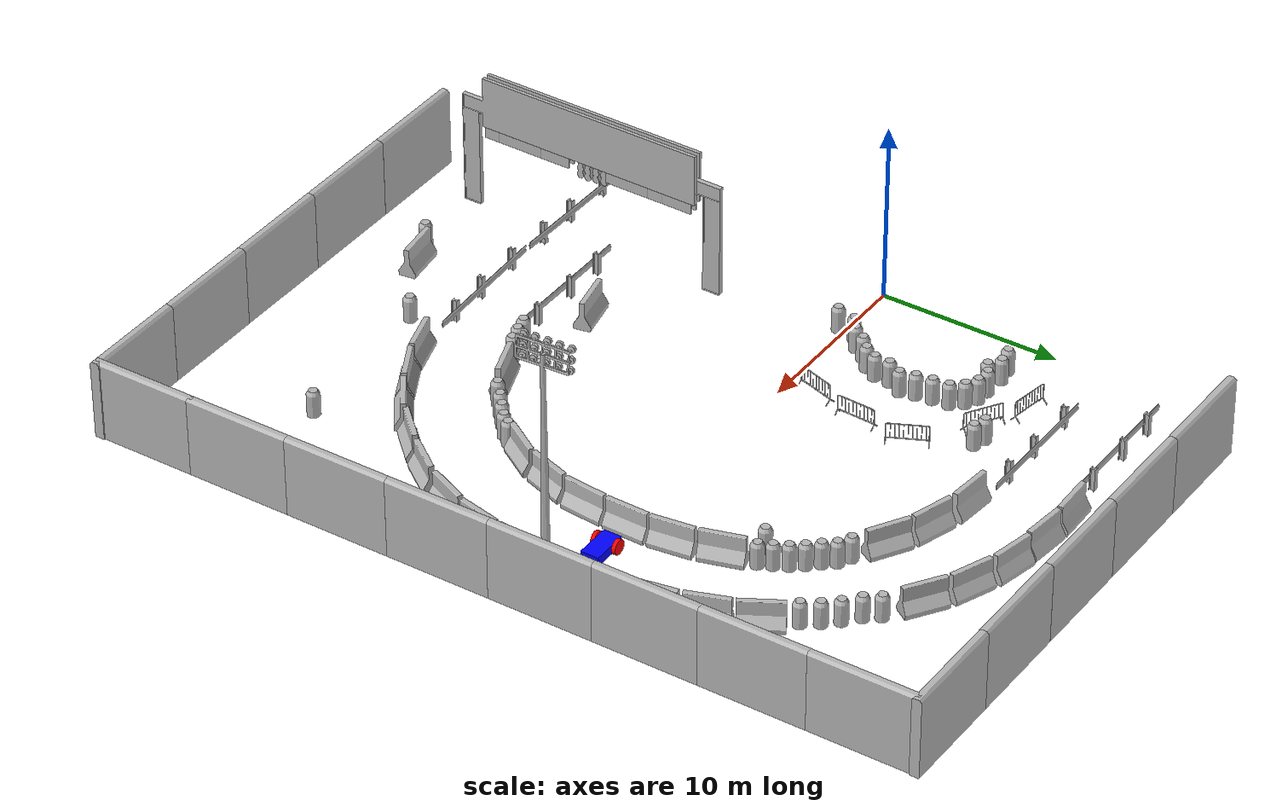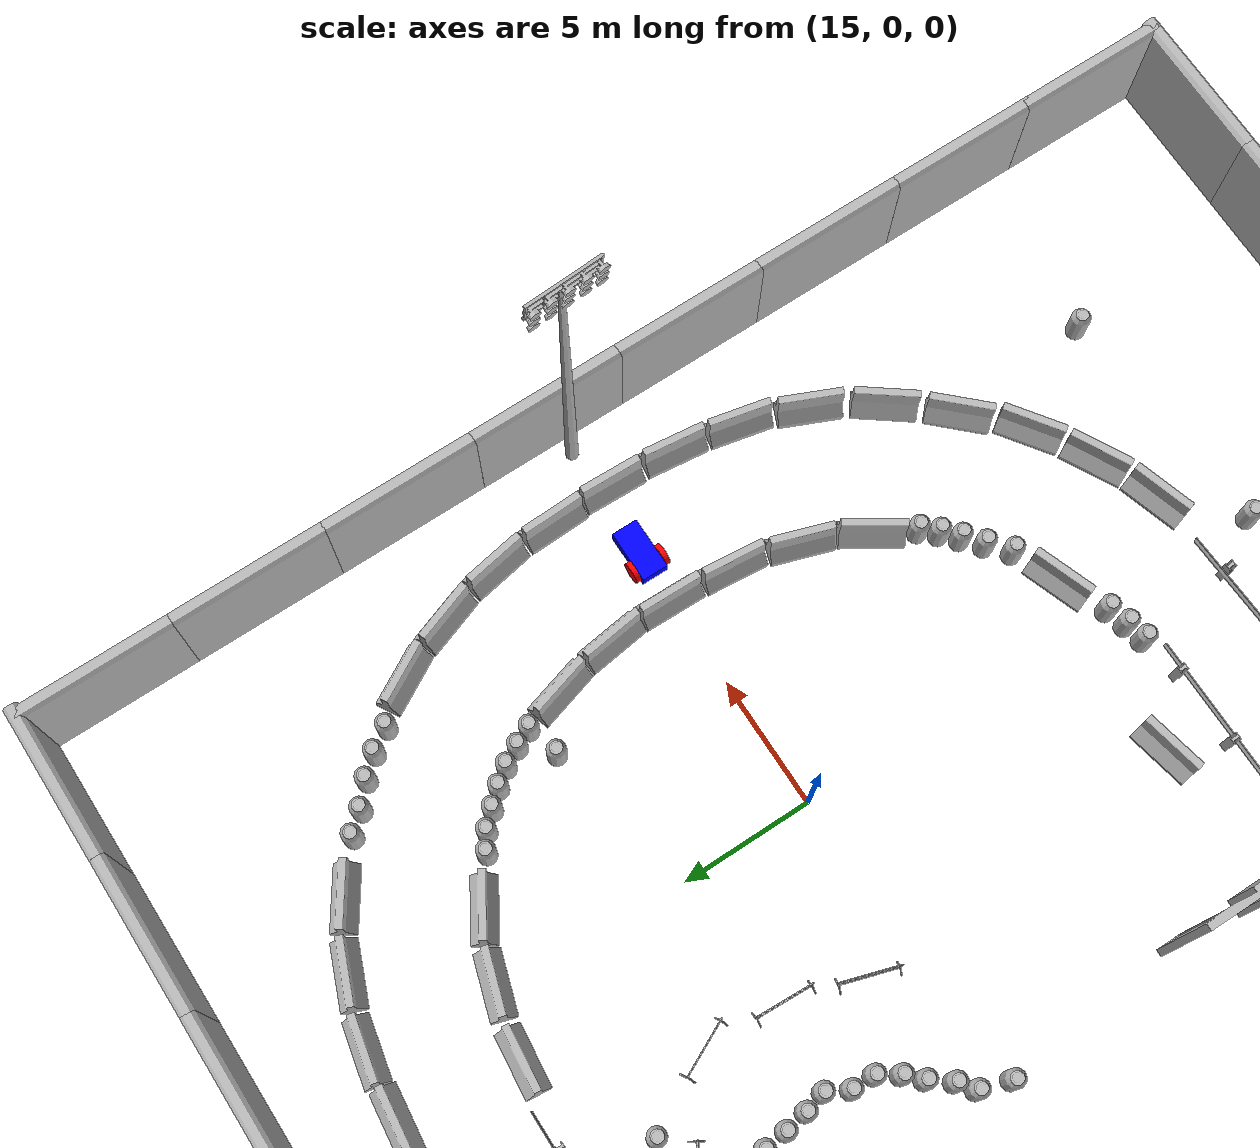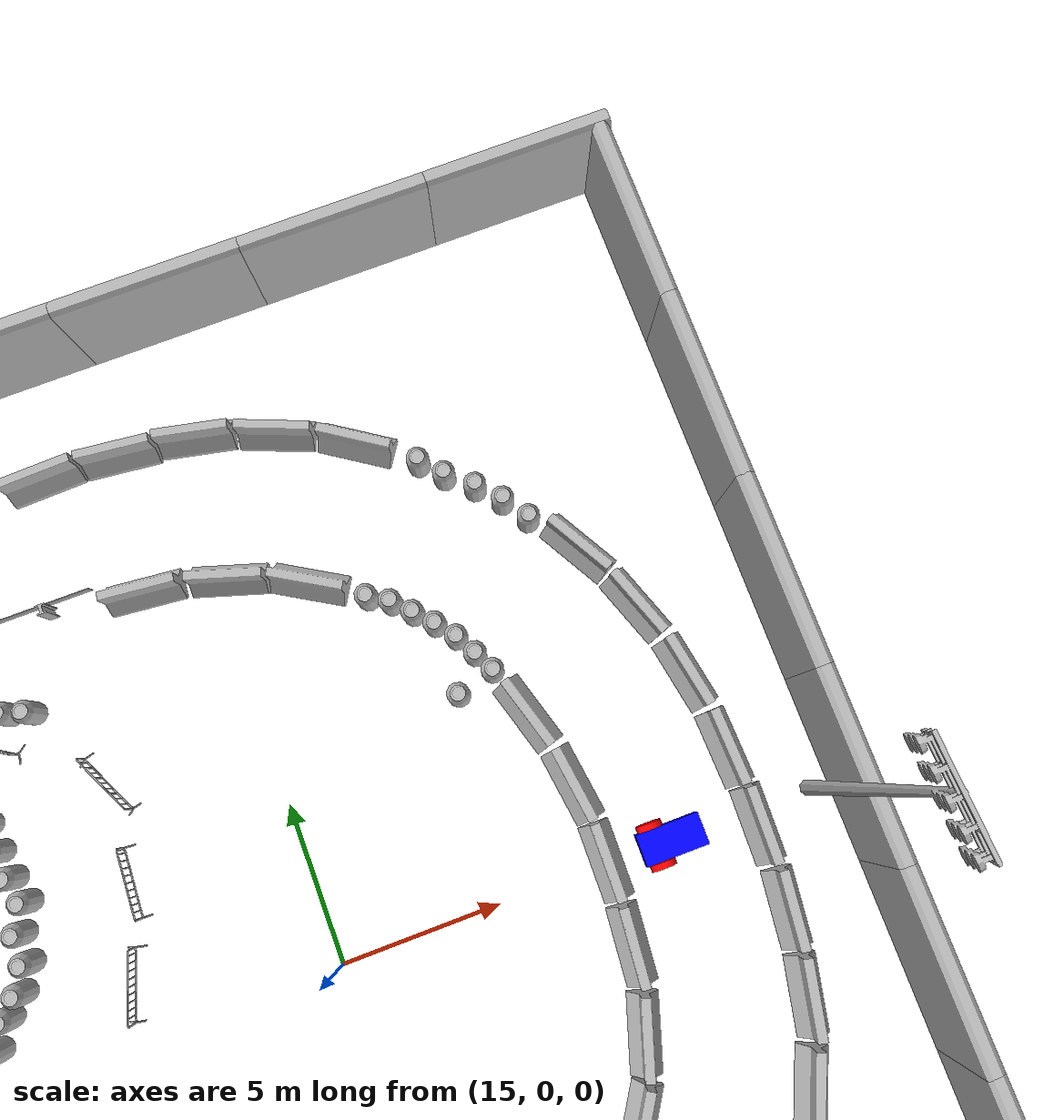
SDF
<sdf version="1.6">
 <world name="default">
  <model name="aws_robomaker_racetrack_Billboard_01">
   <include><uri>model://models/aws_robomaker_racetrack_Billboard_01</uri></include>
   <pose>4.32789 -14.8431 -2e-06 0 1e-06 1.56416</pose>
  </model>
  <model name="aws_robomaker_racetrack_CrashworthBucket_01_04">
   <include><uri>model://models/aws_robomaker_racetrack_CrashworthBucket_01</uri></include>
   <pose>2.35672 8.58743 0.054 0 0 0.094608</pose>
  </model>
  <model name="aws_robomaker_racetrack_CrashworthBucket_01_05">
   <include><uri>model://models/aws_robomaker_racetrack_CrashworthBucket_01</uri></include>
   <pose>3.14399 8.69292 0 0 -0 0.292667</pose>
  </model>
  <model name="aws_robomaker_racetrack_CrashworthBucket_01_06">
   <include><uri>model://models/aws_robomaker_racetrack_CrashworthBucket_01</uri></include>
   <pose>5.18867 8.56895 0 0 0 -0.026658</pose>
  </model>
  <model name="aws_robomaker_racetrack_CrashworthBucket_01_07">
   <include><uri>model://models/aws_robomaker_racetrack_CrashworthBucket_01</uri></include>
   <pose>5.89383 8.24239 0.054 0 0 0</pose>
  </model>
  <model name="aws_robomaker_racetrack_CrashworthBucket_01_08">
   <include><uri>model://models/aws_robomaker_racetrack_CrashworthBucket_01</uri></include>
   <pose>8.58056 10.3426 0.054 0 0 0</pose>
  </model>
  <model name="aws_robomaker_racetrack_CrashworthBucket_01_09">
   <include><uri>model://models/aws_robomaker_racetrack_CrashworthBucket_01</uri></include>
   <pose>7.88227 10.5539 0.054 0 0 0</pose>
  </model>
  <model name="aws_robomaker_racetrack_CrashworthBucket_01_10">
   <include><uri>model://models/aws_robomaker_racetrack_CrashworthBucket_01</uri></include>
   <pose>22.2917 13.5697 0 0 -0 0</pose>
  </model>
  <model name="aws_robomaker_racetrack_CrashworthBucket_01_11">
   <include><uri>model://models/aws_robomaker_racetrack_CrashworthBucket_01</uri></include>
   <pose>22.9018 12.8693 0.054 0 0 0</pose>
  </model>
  <model name="aws_robomaker_racetrack_CrashworthBucket_01_12">
   <include><uri>model://models/aws_robomaker_racetrack_CrashworthBucket_01</uri></include>
   <pose>22.2128 6.62693 0.054 0 0 0</pose>
  </model>
  <model name="aws_robomaker_racetrack_CrashworthBucket_01_13">
   <include><uri>model://models/aws_robomaker_racetrack_CrashworthBucket_01</uri></include>
   <pose>20.9847 6.29253 0 0 -0 0</pose>
  </model>
  <model name="aws_robomaker_racetrack_CrashworthBucket_01_14">
   <include><uri>model://models/aws_robomaker_racetrack_CrashworthBucket_01</uri></include>
   <pose>24.073 -17.9303 0.054 0 0 0</pose>
  </model>
  <model name="aws_robomaker_racetrack_CrashworthBucket_01_15">
   <include><uri>model://models/aws_robomaker_racetrack_CrashworthBucket_01</uri></include>
   <pose>20.8422 -8.59507 0.054 0 0 0.012499</pose>
  </model>
  <model name="aws_robomaker_racetrack_CrashworthBucket_01_16">
   <include><uri>model://models/aws_robomaker_racetrack_CrashworthBucket_01</uri></include>
   <pose>20.3649 -9.17417 0 0 -0 0.004768</pose>
  </model>
  <model name="aws_robomaker_racetrack_CrashworthBucket_01_17">
   <include><uri>model://models/aws_robomaker_racetrack_CrashworthBucket_01</uri></include>
   <pose>19.7995 -9.67862 0.054 0 0 -0.003254</pose>
  </model>
  <model name="aws_robomaker_racetrack_CrashworthBucket_01_18">
   <include><uri>model://models/aws_robomaker_racetrack_CrashworthBucket_01</uri></include>
   <pose>19.1471 -10.2467 0.054 0 0 0</pose>
  </model>
  <model name="aws_robomaker_racetrack_CrashworthBucket_01_19">
   <include><uri>model://models/aws_robomaker_racetrack_CrashworthBucket_01</uri></include>
   <pose>18.3999 -10.9106 0.054 0 0 0</pose>
  </model>
  <model name="aws_robomaker_racetrack_CrashworthBucket_01_22">
   <include><uri>model://models/aws_robomaker_racetrack_CrashworthBucket_01</uri></include>
   <pose>14.1427 -12.6734 0.054 0 0 0</pose>
  </model>
  <model name="aws_robomaker_racetrack_CrashworthBucket_01_23">
   <include><uri>model://models/aws_robomaker_racetrack_CrashworthBucket_01</uri></include>
   <pose>14.9254 -12.4456 0.054 0 0 0</pose>
  </model>
  <model name="aws_robomaker_racetrack_CrashworthBucket_01_25">
   <include><uri>model://models/aws_robomaker_racetrack_CrashworthBucket_01</uri></include>
   <pose>13.3868 -12.8508 0.054 0 0 0</pose>
  </model>
  <model name="aws_robomaker_racetrack_CrashworthBucket_01_26">
   <include><uri>model://models/aws_robomaker_racetrack_CrashworthBucket_01</uri></include>
   <pose>9.22311 -21.8198 0.054 0 0 0</pose>
  </model>
  <model name="aws_robomaker_racetrack_CrashworthBucket_01_27">
   <include><uri>model://models/aws_robomaker_racetrack_CrashworthBucket_01</uri></include>
   <pose>3.82438 -0.358379 0 0 -0 0</pose>
  </model>
  <model name="aws_robomaker_racetrack_CrashworthBucket_01_28">
   <include><uri>model://models/aws_robomaker_racetrack_CrashworthBucket_01</uri></include>
   <pose>14.9648 -18.6736 0.054 0 0 0</pose>
  </model>
  <model name="aws_robomaker_racetrack_CrashworthBucket_01_29">
   <include><uri>model://models/aws_robomaker_racetrack_CrashworthBucket_01</uri></include>
   <pose>23.6827 12.1956 0.054 0 0 0</pose>
  </model>
  <model name="aws_robomaker_racetrack_CrashworthBucket_01_30">
   <include><uri>model://models/aws_robomaker_racetrack_CrashworthBucket_01</uri></include>
   <pose>24.3346 11.4874 0.054 0 0 0</pose>
  </model>
  <model name="aws_robomaker_racetrack_CrashworthBucket_01_31">
   <include><uri>model://models/aws_robomaker_racetrack_CrashworthBucket_01</uri></include>
   <pose>24.8882 10.6788 0.054 0 0 0</pose>
  </model>
  <model name="aws_robomaker_racetrack_CrashworthBucket_01_32">
   <include><uri>model://models/aws_robomaker_racetrack_CrashworthBucket_01</uri></include>
   <pose>20.5304 9.13561 0.054 0 0 -0.001449</pose>
  </model>
  <model name="aws_robomaker_racetrack_CrashworthBucket_01_33">
   <include><uri>model://models/aws_robomaker_racetrack_CrashworthBucket_01</uri></include>
   <pose>19.3714 10.0864 0.054 0 0 0</pose>
  </model>
  <model name="aws_robomaker_racetrack_CrashworthBucket_01_34">
   <include><uri>model://models/aws_robomaker_racetrack_CrashworthBucket_01</uri></include>
   <pose>20.0016 9.69426 0 0 0 -0.00182</pose>
  </model>
  <model name="aws_robomaker_racetrack_CrashworthBucket_01_35">
   <include><uri>model://models/aws_robomaker_racetrack_CrashworthBucket_01</uri></include>
   <pose>21.0478 8.57525 0.054 0 0 -0.000349</pose>
  </model>
  <model name="aws_robomaker_racetrack_CrashworthBucket_01_36">
   <include><uri>model://models/aws_robomaker_racetrack_CrashworthBucket_01</uri></include>
   <pose>21.5218 7.97169 0.054 0 0 0</pose>
  </model>
  <model name="aws_robomaker_racetrack_CrashworthBucket_01_37">
   <include><uri>model://models/aws_robomaker_racetrack_CrashworthBucket_01</uri></include>
   <pose>21.8874 7.29413 0.054 0 0 0</pose>
  </model>
  <model name="aws_robomaker_racetrack_CrashworthBucket_01_38">
   <include><uri>model://models/aws_robomaker_racetrack_CrashworthBucket_01</uri></include>
   <pose>6.38383 7.63289 0.054 0 0 0</pose>
  </model>
  <model name="aws_robomaker_racetrack_CrashworthBucket_01_39">
   <include><uri>model://models/aws_robomaker_racetrack_CrashworthBucket_01</uri></include>
   <pose>6.48514 6.73841 0.054 0 0 0</pose>
  </model>
  <model name="aws_robomaker_racetrack_CrashworthBucket_01_40">
   <include><uri>model://models/aws_robomaker_racetrack_CrashworthBucket_01</uri></include>
   <pose>6.63137 5.86016 0.054 0 0 0</pose>
  </model>
  <model name="aws_robomaker_racetrack_CrashworthBucket_01_41">
   <include><uri>model://models/aws_robomaker_racetrack_CrashworthBucket_01</uri></include>
   <pose>6.84089 5.04433 0.054 0 0 0</pose>
  </model>
  <model name="aws_robomaker_racetrack_CrashworthBucket_01_42">
   <include><uri>model://models/aws_robomaker_racetrack_CrashworthBucket_01</uri></include>
   <pose>6.41586 4.22597 0.054 0 0 0</pose>
  </model>
  <model name="aws_robomaker_racetrack_CrashworthBucket_01_43">
   <include><uri>model://models/aws_robomaker_racetrack_CrashworthBucket_01</uri></include>
   <pose>4.45229 8.66174 0.054 0 0 0.095583</pose>
  </model>
  <model name="aws_robomaker_racetrack_CrashworthBucket_01_45">
   <include><uri>model://models/aws_robomaker_racetrack_CrashworthBucket_01</uri></include>
   <pose>5.3642 2.03973 0.054 0 0 -0.008872</pose>
  </model>
  <model name="aws_robomaker_racetrack_CrashworthBucket_01_46">
   <include><uri>model://models/aws_robomaker_racetrack_CrashworthBucket_01</uri></include>
   <pose>5.91311 2.58362 0 0 0 -0.010849</pose>
  </model>
  <model name="aws_robomaker_racetrack_CrashworthBucket_01_47">
   <include><uri>model://models/aws_robomaker_racetrack_CrashworthBucket_01</uri></include>
   <pose>6.38729 3.3437 0.054 0 0 0</pose>
  </model>
  <model name="aws_robomaker_racetrack_CrashworthBucket_01_48">
   <include><uri>model://models/aws_robomaker_racetrack_CrashworthBucket_01</uri></include>
   <pose>4.78436 1.25544 0 0 0 -0.004687</pose>
  </model>
  <model name="aws_robomaker_racetrack_CrashworthBucket_01_49">
   <include><uri>model://models/aws_robomaker_racetrack_CrashworthBucket_01</uri></include>
   <pose>4.1948 0.806848 0.054 0 0 -0.002707</pose>
  </model>
  <model name="aws_robomaker_racetrack_CrashworthBucket_01_53">
   <include><uri>model://models/aws_robomaker_racetrack_CrashworthBucket_01</uri></include>
   <pose>3.7947 8.27498 0 0 0 -0.244875</pose>
  </model>
  <model name="aws_robomaker_racetrack_FenceMesh_01_00">
   <include><uri>model://models/aws_robomaker_racetrack_FenceMesh_01</uri></include>
   <pose>4.2331 -11.1761 5.05223 0 0 -0.006038</pose>
  </model>
  <model name="aws_robomaker_racetrack_FenceMesh_01_01">
   <include><uri>model://models/aws_robomaker_racetrack_FenceMesh_01</uri></include>
   <pose>4.16406 -18.6269 5.05223 0 0 -0.006038</pose>
  </model>
  <model name="aws_robomaker_racetrack_FenceMesh_01_02">
   <include><uri>model://models/aws_robomaker_racetrack_FenceMesh_01</uri></include>
   <pose>4.63223 -18.6067 5.05223 0 0 -0.006038</pose>
  </model>
  <model name="aws_robomaker_racetrack_FenceMesh_01_03">
   <include><uri>model://models/aws_robomaker_racetrack_FenceMesh_01</uri></include>
   <pose>4.67467 -11.1966 5.05223 0 0 -0.006038</pose>
  </model>
  <model name="aws_robomaker_racetrack_Fence_01_00">
   <include><uri>model://models/aws_robomaker_racetrack_Fence_01</uri></include>
   <pose>7.552996 13.158695 0 0 0 -1.57272</pose>
  </model>
  <model name="aws_robomaker_racetrack_Fence_01_06">
   <include><uri>model://models/aws_robomaker_racetrack_Fence_01</uri></include>
   <pose>3.247635 -16.899557 0.054  0 0 -1.581650</pose>
  </model>
  <model name="aws_robomaker_racetrack_Fence_01_07">
   <include><uri>model://models/aws_robomaker_racetrack_Fence_01</uri></include>
   <pose>11.364270 -16.813890 0.054  0.0 0.0 -1.525504</pose>
  </model>
  <model name="aws_robomaker_racetrack_Fence_01_11">
   <include><uri>model://models/aws_robomaker_racetrack_Fence_01</uri></include>
   <pose>8.89898 -13.134610 0.054638 0.0 0.0 1.572679</pose>
  </model>
  <model name="aws_robomaker_racetrack_Fence_01_15">
   <include><uri>model://models/aws_robomaker_racetrack_Fence_01</uri></include>
   <pose>5.475008 16.818918 0.054  0 -0 1.57158</pose>
  </model>
  <model name="aws_robomaker_racetrack_Fence_02_01">
   <include><uri>model://models/aws_robomaker_racetrack_Fence_02</uri></include>
   <pose>9.06357 1.626 0 0 0 -0.300407</pose>
  </model>
  <model name="aws_robomaker_racetrack_Fence_02_05">
   <include><uri>model://models/aws_robomaker_racetrack_Fence_02</uri></include>
   <pose>4.57205 11.1353 0 0 0 -1.73608</pose>
  </model>
  <model name="aws_robomaker_racetrack_Fence_02_06">
   <include><uri>model://models/aws_robomaker_racetrack_Fence_02</uri></include>
   <pose>6.8958583 9.887979 0 0 0 -2.140475</pose>
  </model>
  <model name="aws_robomaker_racetrack_Fence_02_10">
   <include><uri>model://models/aws_robomaker_racetrack_Fence_02</uri></include>
   <pose>9.89165 4.45225 0 0 0 -0.045392</pose>
  </model>
  <model name="aws_robomaker_racetrack_Fence_02_11">
   <include><uri>model://models/aws_robomaker_racetrack_Fence_02</uri></include>
   <pose>10.0686 7.48939 0 0 -0 0.450699</pose>
  </model>
  <model name="aws_robomaker_racetrack_RaceStartLight_01_00">
   <include><uri>model://models/aws_robomaker_racetrack_RaceStartLight_01</uri></include>
   <pose>4.13359 -14.1692 5.08709 0 -0 0</pose>
  </model>
  <model name="aws_robomaker_racetrack_RaceStartLight_01_01">
   <include><uri>model://models/aws_robomaker_racetrack_RaceStartLight_01</uri></include>
   <pose>4.14665 -14.6522 5.08709 0 -0 0</pose>
  </model>
  <model name="aws_robomaker_racetrack_RaceStartLight_01_02">
   <include><uri>model://models/aws_robomaker_racetrack_RaceStartLight_01</uri></include>
   <pose>4.21676 -15.0918 5.08709 0 -0 0</pose>
  </model>
  <model name="aws_robomaker_racetrack_RaceStartLight_01_03">
   <include><uri>model://models/aws_robomaker_racetrack_RaceStartLight_01</uri></include>
   <pose>4.17594 -15.5526 5.08709 0 -0 0</pose>
  </model>
  <model name="aws_robomaker_racetrack_StonePier_01_05">
   <include><uri>model://models/aws_robomaker_racetrack_StonePier_01</uri></include>
   <pose>11.0892 17.2043 0.054 0 -0.0 0.029389</pose>
  </model>
  <model name="aws_robomaker_racetrack_StonePier_01_06">
   <include><uri>model://models/aws_robomaker_racetrack_StonePier_01</uri></include>
   <pose>13.5633 17.1121 0.054 0 -0.0 -0.108086</pose>
  </model>
  <model name="aws_robomaker_racetrack_StonePier_01_07">
   <include><uri>model://models/aws_robomaker_racetrack_StonePier_01</uri></include>
   <pose>16.0013 16.8104 0.054 0 -0.0 -0.206147</pose>
  </model>
  <model name="aws_robomaker_racetrack_StonePier_01_08">
   <include><uri>model://models/aws_robomaker_racetrack_StonePier_01</uri></include>
   <pose>18.4263 16.0384 0.054 0 -0.0 -0.379591</pose>
  </model>
  <model name="aws_robomaker_racetrack_StonePier_01_09">
   <include><uri>model://models/aws_robomaker_racetrack_StonePier_01</uri></include>
   <pose>17.8323 11.1467 0.054 0 -0.0 -0.536699</pose>
  </model>
  <model name="aws_robomaker_racetrack_StonePier_01_10">
   <include><uri>model://models/aws_robomaker_racetrack_StonePier_01</uri></include>
   <pose>22.7563 5.03589 0.054 0 -0.0 -1.28348</pose>
  </model>
  <model name="aws_robomaker_racetrack_StonePier_01_11">
   <include><uri>model://models/aws_robomaker_racetrack_StonePier_01</uri></include>
   <pose>23.2964 2.57509 0.054 -0 -0.0 -1.43498</pose>
  </model>
  <model name="aws_robomaker_racetrack_StonePier_01_12">
   <include><uri>model://models/aws_robomaker_racetrack_StonePier_01</uri></include>
   <pose>23.4326 0.10745 0.054 -0 -0.0 -1.58404</pose>
  </model>
  <model name="aws_robomaker_racetrack_StonePier_01_13">
   <include><uri>model://models/aws_robomaker_racetrack_StonePier_01</uri></include>
   <pose>23.2774 -2.40527 0.054 0 -0.0 -1.65922</pose>
  </model>
  <model name="aws_robomaker_racetrack_StonePier_01_14">
   <include><uri>model://models/aws_robomaker_racetrack_StonePier_01</uri></include>
   <pose>22.705 -4.89186 0.054 -0 -0.0 -1.88566</pose>
  </model>
  <model name="aws_robomaker_racetrack_StonePier_01_15">
   <include><uri>model://models/aws_robomaker_racetrack_StonePier_01</uri></include>
   <pose>21.6688 -7.19526 0.054 0 -0.0 -2.13625</pose>
  </model>
  <model name="aws_robomaker_racetrack_StonePier_01_16">
   <include><uri>model://models/aws_robomaker_racetrack_StonePier_01</uri></include>
   <pose>28.1211 -0.475719 0.054 0 -0.0 -1.59506</pose>
  </model>
  <model name="aws_robomaker_racetrack_StonePier_01_17">
   <include><uri>model://models/aws_robomaker_racetrack_StonePier_01</uri></include>
   <pose>16.7061 -11.7058 0.054 -0 -0.0 -2.7953</pose>
  </model>
  <model name="aws_robomaker_racetrack_StonePier_01_18">
   <include><uri>model://models/aws_robomaker_racetrack_StonePier_01</uri></include>
   <pose>28.0027 -3.03906 0.054 0 -0.0 -1.68291</pose>
  </model>
  <model name="aws_robomaker_racetrack_StonePier_01_19">
   <include><uri>model://models/aws_robomaker_racetrack_StonePier_01</uri></include>
   <pose>9.84486 -11.2119 0.054 0 -0.0 -2.93657</pose>
  </model>
  <model name="aws_robomaker_racetrack_StonePier_01_20">
   <include><uri>model://models/aws_robomaker_racetrack_StonePier_01</uri></include>
   <pose>10.8625 -21.1556 0.054 -0 -0.0 0.135159</pose>
  </model>
  <model name="aws_robomaker_racetrack_StonePier_01_21">
   <include><uri>model://models/aws_robomaker_racetrack_StonePier_01</uri></include>
   <pose>17.2914 -16.4156 0.054 0 -0.0 0.298911</pose>
  </model>
  <model name="aws_robomaker_racetrack_StonePier_01_22">
   <include><uri>model://models/aws_robomaker_racetrack_StonePier_01</uri></include>
   <pose>19.6208 -15.4615 0.054 0 -0.0 0.489077</pose>
  </model>
  <model name="aws_robomaker_racetrack_StonePier_01_23">
   <include><uri>model://models/aws_robomaker_racetrack_StonePier_01</uri></include>
   <pose>21.7939 -14.1476 0.054 0 -0.0 0.61668</pose>
  </model>
  <model name="aws_robomaker_racetrack_StonePier_01_24">
   <include><uri>model://models/aws_robomaker_racetrack_StonePier_01</uri></include>
   <pose>23.6698 -12.3608 0.054 0 -0.0 0.810318</pose>
  </model>
  <model name="aws_robomaker_racetrack_StonePier_01_25">
   <include><uri>model://models/aws_robomaker_racetrack_StonePier_01</uri></include>
   <pose>25.3929 -10.3347 0.054 -0 -0.0 0.931507</pose>
  </model>
  <model name="aws_robomaker_racetrack_StonePier_01_26">
   <include><uri>model://models/aws_robomaker_racetrack_StonePier_01</uri></include>
   <pose>27.7466 4.53211 0.054 0 -0.0 1.75246</pose>
  </model>
  <model name="aws_robomaker_racetrack_StonePier_01_27">
   <include><uri>model://models/aws_robomaker_racetrack_StonePier_01</uri></include>
   <pose>27.0691 6.99271 0.054 0 -0.0 1.91654</pose>
  </model>
  <model name="aws_robomaker_racetrack_StonePier_01_28">
   <include><uri>model://models/aws_robomaker_racetrack_StonePier_01</uri></include>
   <pose>26.0366 9.29805 0.054 0 -0.0 2.08782</pose>
  </model>
  <model name="aws_robomaker_racetrack_StonePier_01_29">
   <include><uri>model://models/aws_robomaker_racetrack_StonePier_01</uri></include>
   <pose>26.7385 -7.99231 0.054 -0 -0.0 1.16098</pose>
  </model>
  <model name="aws_robomaker_racetrack_StonePier_01_30">
   <include><uri>model://models/aws_robomaker_racetrack_StonePier_01</uri></include>
   <pose>27.5962 -5.54706 0.054 0 -0.0 1.36231</pose>
  </model>
  <model name="aws_robomaker_racetrack_StonePier_01_31">
   <include><uri>model://models/aws_robomaker_racetrack_StonePier_01</uri></include>
   <pose>28.0314 1.9989 0.054 0 -0.0 -1.53351</pose>
  </model>
  <model name="aws_robomaker_racetrack_StonePier_01_32">
   <include><uri>model://models/aws_robomaker_racetrack_StonePier_01</uri></include>
   <pose>20.6714 14.8473 0.054 0 -0.0 -0.587598</pose>
  </model>
  <model name="aws_robomaker_racetrack_StonePier_01_33">
   <include><uri>model://models/aws_robomaker_racetrack_StonePier_01</uri></include>
   <pose>12.9654 12.6879 0.054 0 -0.0 -0.096781</pose>
  </model>
  <model name="aws_robomaker_racetrack_StonePier_01_34">
   <include><uri>model://models/aws_robomaker_racetrack_StonePier_01</uri></include>
   <pose>15.5357 12.1477 0.054 -0 0.00036 -0.29956</pose>
  </model>
  <model name="aws_robomaker_racetrack_Light_01_02">
   <include><uri>model://models/aws_robomaker_racetrack_Light_01</uri></include>
   <pose>29.8469 -0.049215 0 0 -0 1.63215</pose>
  </model>
  <model name="aws_robomaker_racetrack_Wall_01_00">
   <include><uri>model://models/aws_robomaker_racetrack_Wall_01</uri></include>
   <pose>10.772 20.6862 0 0 -0 0</pose>
  </model>
  <model name="aws_robomaker_racetrack_Wall_01_01">
   <include><uri>model://models/aws_robomaker_racetrack_Wall_01</uri></include>
   <pose>4.94795 20.6846 0 0 -0 0</pose>
  </model>
  <model name="aws_robomaker_racetrack_Wall_01_16">
   <include><uri>model://models/aws_robomaker_racetrack_Wall_01</uri></include>
   <pose>5.12343 -25.507 0 0 -0 0</pose>
  </model>
  <model name="aws_robomaker_racetrack_Wall_01_17">
   <include><uri>model://models/aws_robomaker_racetrack_Wall_01</uri></include>
   <pose>10.9489 -25.511 0 0 -0 0</pose>
  </model>
  <model name="aws_robomaker_racetrack_Wall_01_18">
   <include><uri>model://models/aws_robomaker_racetrack_Wall_01</uri></include>
   <pose>16.7552 -25.5119 0 0 -0 0</pose>
  </model>
  <model name="aws_robomaker_racetrack_Wall_01_19">
   <include><uri>model://models/aws_robomaker_racetrack_Wall_01</uri></include>
   <pose>22.5772 -25.5071 0 0 -0 0</pose>
  </model>
  <model name="aws_robomaker_racetrack_Wall_01_20">
   <include><uri>model://models/aws_robomaker_racetrack_Wall_01</uri></include>
   <pose>28.3975 -25.5099 0 0 -0 0</pose>
  </model>
  <model name="aws_robomaker_racetrack_Wall_01_21">
   <include><uri>model://models/aws_robomaker_racetrack_Wall_01</uri></include>
   <pose>16.5737 20.6849 0 0 -0 0</pose>
  </model>
  <model name="aws_robomaker_racetrack_Wall_01_22">
   <include><uri>model://models/aws_robomaker_racetrack_Wall_01</uri></include>
   <pose>22.3987 20.6806 0 0 -0 0</pose>
  </model>
  <model name="aws_robomaker_racetrack_Wall_01_23">
   <include><uri>model://models/aws_robomaker_racetrack_Wall_01</uri></include>
   <pose>28.2373 20.6833 0 0 -0 0</pose>
  </model>
  <model name="aws_robomaker_racetrack_Wall_01_32">
   <include><uri>model://models/aws_robomaker_racetrack_Wall_01</uri></include>
   <pose>30.9522 -17.1105 0 0 -0 1.57459</pose>
  </model>
  <model name="aws_robomaker_racetrack_Wall_01_33">
   <include><uri>model://models/aws_robomaker_racetrack_Wall_01</uri></include>
   <pose>30.9711 -22.7005 0 0 -0 1.57459</pose>
  </model>
  <model name="aws_robomaker_racetrack_Wall_01_34">
   <include><uri>model://models/aws_robomaker_racetrack_Wall_01</uri></include>
   <pose>30.9317 -11.3127 0 0 -0 1.57459</pose>
  </model>
  <model name="aws_robomaker_racetrack_Wall_01_35">
   <include><uri>model://models/aws_robomaker_racetrack_Wall_01</uri></include>
   <pose>30.9092 -5.49982 0 0 -0 1.57459</pose>
  </model>
  <model name="aws_robomaker_racetrack_Wall_01_36">
   <include><uri>model://models/aws_robomaker_racetrack_Wall_01</uri></include>
   <pose>30.8878 0.333623 0 0 -0 1.57459</pose>
  </model>
  <model name="aws_robomaker_racetrack_Wall_01_37">
   <include><uri>model://models/aws_robomaker_racetrack_Wall_01</uri></include>
   <pose>30.8663 6.16983 0 0 -0 1.57459</pose>
  </model>
  <model name="aws_robomaker_racetrack_Wall_01_38">
   <include><uri>model://models/aws_robomaker_racetrack_Wall_01</uri></include>
   <pose>30.8445 11.977 0 0 -0 1.57459</pose>
  </model>
  <model name="aws_robomaker_racetrack_Wall_01_39">
   <include><uri>model://models/aws_robomaker_racetrack_Wall_01</uri></include>
   <pose>30.8212 17.8155 0 0 -0 1.57459</pose>
  </model>
  <model name="vehicle_blue" canonical_link="chassis">
   <plugin filename="libignition-gazebo-diff-drive-system.so" name="ignition::gazebo::systems::DiffDrive">
    <left_joint>left_wheel_joint</left_joint>
    <right_joint>right_wheel_joint</right_joint>
    <wheel_separation>1.2</wheel_separation>
    <wheel_radius>0.4</wheel_radius>
    <odom_publish_frequency>1</odom_publish_frequency>
    <topic>cmd_vel</topic>
   </plugin>
   <pose>25 0 0 0 0 0</pose>
   <link name="chassis">
    <pose>0.5 0 0.4 0 0 0</pose>
    <inertial>
     <mass>1.14395</mass>
     <inertia>
      <ixx>0.095329</ixx>
      <ixy>0</ixy>
      <ixz>0</ixz>
      <iyy>0.381317</iyy>
      <iyz>0</iyz>
      <izz>0.476646</izz>
     </inertia>
    </inertial>
    <visual name="visual">
     <geometry><box><size>2.0 1.0 0.5</size></box></geometry>
     <material>
      <ambient>0.0 0.0 1.0 1</ambient>
      <diffuse>0.0 0.0 1.0 1</diffuse>
      <specular>0.0 0.0 1.0 1</specular>
     </material>
    </visual>
    <collision name="collision"><geometry><box><size>2.0 1.0 0.5</size></box></geometry></collision>
   </link>
   <link name="left_wheel">
    <pose relative_to="chassis">-0.5 0.6 0 -1.5707 0 0</pose>
    <inertial>
     <mass>1</mass>
     <inertia><ixx>0.043333</ixx><ixy>0</ixy><ixz>0</ixz><iyy>0.043333</iyy><iyz>0</iyz><izz>0.08</izz></inertia>
    </inertial>
    <visual name="visual">
     <geometry><cylinder><radius>0.4</radius><length>0.2</length></cylinder></geometry>
     <material>
      <ambient>1.0 0.0 0.0 1</ambient>
      <diffuse>1.0 0.0 0.0 1</diffuse>
      <specular>1.0 0.0 0.0 1</specular>
     </material>
    </visual>
    <collision name="collision">
     <geometry><cylinder><radius>0.4</radius><length>0.2</length></cylinder></geometry>
    </collision>
   </link>
   <link name="right_wheel">
    <pose relative_to="chassis">-0.5 -0.6 0 -1.5707 0 0</pose>
    <inertial>
     <mass>1</mass>
     <inertia><ixx>0.043333</ixx><ixy>0</ixy><ixz>0</ixz><iyy>0.043333</iyy><iyz>0</iyz><izz>0.08</izz></inertia>
    </inertial>
    <visual name="visual">
     <geometry><cylinder><radius>0.4</radius><length>0.2</length></cylinder></geometry>
     <material>
      <ambient>1.0 0.0 0.0 1</ambient>
      <diffuse>1.0 0.0 0.0 1</diffuse>
      <specular>1.0 0.0 0.0 1</specular>
     </material>
    </visual>
    <collision name="collision">
     <geometry><cylinder><radius>0.4</radius><length>0.2</length></cylinder></geometry>
    </collision>
   </link>
   <frame name="caster_frame" attached_to="chassis"><pose>0.8 0 -0.2 0 0 0</pose></frame>
   <link name="caster">
    <pose relative_to="caster_frame"/>
    <inertial>
     <mass>1</mass>
     <inertia><ixx>0.016</ixx><ixy>0</ixy><ixz>0</ixz><iyy>0.016</iyy><iyz>0</iyz><izz>0.016</izz></inertia>
    </inertial>
    <visual name="visual">
     <geometry><sphere><radius>0.2</radius></sphere></geometry>
     <material>
      <ambient>0.0 1 0.0 1</ambient>
      <diffuse>0.0 1 0.0 1 1</diffuse>
      <specular>0.0 1 0.0 1</specular>
     </material>
    </visual>
    <collision name="collision"><geometry><sphere><radius>0.2</radius></sphere></geometry></collision>
   </link>
   <joint name="left_wheel_joint" type="revolute">
    <pose relative_to="left_wheel"/>
    <parent>chassis</parent>
    <child>left_wheel</child>
    <axis>
     <xyz expressed_in="__model__">0 1 0</xyz>
     <limit><lower>-1.79769e+308</lower><upper>1.79769e+308</upper></limit>
    </axis>
   </joint>
   <joint name="right_wheel_joint" type="revolute">
    <pose relative_to="right_wheel"/>
    <parent>chassis</parent>
    <child>right_wheel</child>
    <axis>
     <xyz expressed_in="__model__">0 1 0</xyz>
     <limit><lower>-1.79769e+308</lower><upper>1.79769e+308</upper></limit>
    </axis>
   </joint>
   <joint name="caster_wheel" type="ball"><parent>chassis</parent><child>caster</child></joint>
  </model>
  <model name="ground_plane">
   <pose>0 0 -1 0 -0 0</pose>
   <scale>1 1 1</scale>
   <link name="link">
    <pose>0 0 -1 0 -0 0</pose>
    <velocity>0 0 0 0 -0 0</velocity>
    <acceleration>0 0 0 0 -0 0</acceleration>
   </link>
  </model>
 </world>
</sdf>
